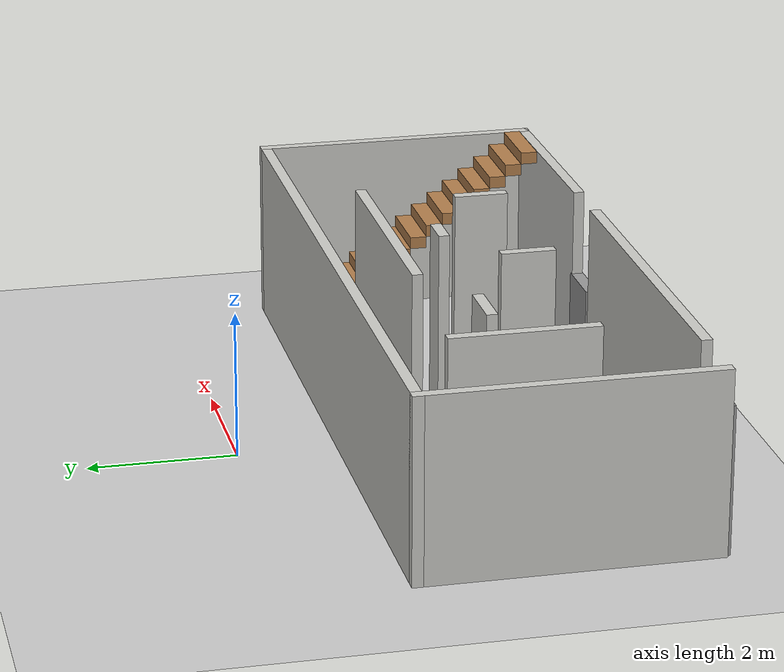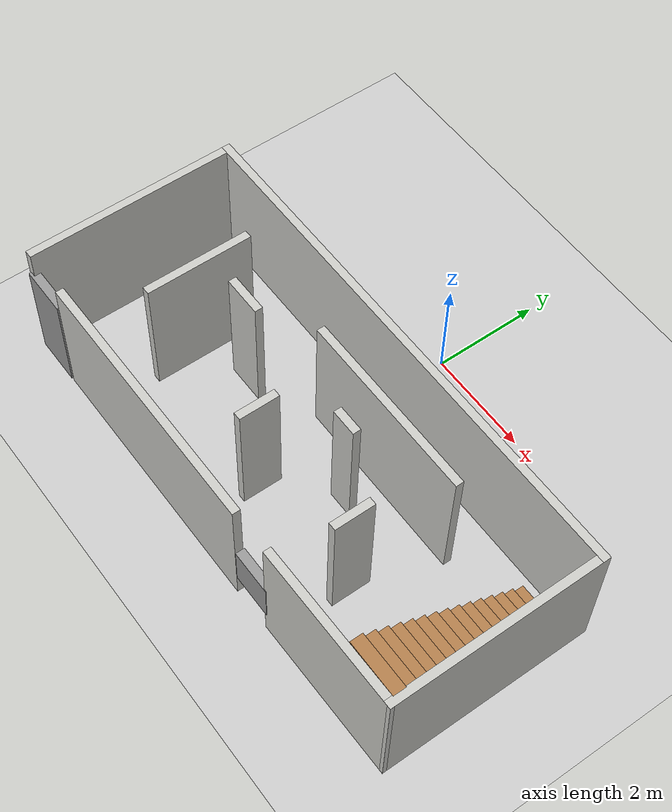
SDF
<sdf version="1.6">
 <world name="default">
  <light name="sun" type="directional">
   <pose>0 0 10 0 -0 0</pose>
   <diffuse>0.8 0.8 0.8 1</diffuse>
   <specular>0.1 0.1 0.1 1</specular>
   <attenuation>
    <range>1000</range>
    <constant>0.9</constant>
    <linear>0.01</linear>
    <quadratic>0.001</quadratic>
   </attenuation>
   <direction>-0.5 0.5 -1</direction>
  </light>
  <model name="ground_plane">
   <static>1</static>
   <link name="link">
    <collision name="collision">
     <geometry><plane><normal>0 0 1</normal><size>100 100</size></plane></geometry>
     <surface><friction><ode><mu>100</mu><mu2>50</mu2></ode></friction></surface>
    </collision>
    <visual name="visual">
     <cast_shadows>0</cast_shadows>
     <geometry><plane><normal>0 0 1</normal><size>100 100</size></plane></geometry>
     <material>
      <script><uri>file://media/materials/scripts/gazebo.material</uri><name>Gazebo/Grey</name></script>
     </material>
    </visual>
   </link>
  </model>
  <gravity>0 0 -9.8</gravity>
  <magnetic_field>6e-06 2.3e-05 -4.2e-05</magnetic_field>
  <atmosphere type="adiabatic"/>
  <physics name="default_physics" default="0" type="ode">
   <max_step_size>0.001</max_step_size>
   <real_time_factor>1</real_time_factor>
   <real_time_update_rate>1000</real_time_update_rate>
  </physics>
  <scene><ambient>0.4 0.4 0.4 1</ambient><background>0.7 0.7 0.7 1</background><shadows>1</shadows></scene>
  <spherical_coordinates>
   <surface_model>EARTH_WGS84</surface_model>
   <latitude_deg>0</latitude_deg>
   <longitude_deg>0</longitude_deg>
   <elevation>0</elevation>
   <heading_deg>0</heading_deg>
  </spherical_coordinates>
  <model name="tempworld">
   <pose>0.450354 -3.35425 0 0 -0 0</pose>
   <link name="Door_0">
    <collision name="Door_0_Collision">
     <geometry><box><size>0.9 0.17 2</size></box></geometry>
     <pose>0 0 1 0 -0 0</pose>
    </collision>
    <visual name="Door_0_Visual">
     <pose>0 0 1 0 -0 0</pose>
     <geometry><box><size>0.9 0.17 2</size></box></geometry>
     <material>
      <script><uri>file://media/materials/scripts/gazebo.material</uri><name>Gazebo/Grey</name></script>
     </material>
    </visual>
    <pose>-4.38035 -1.94425 0 0 -0 0</pose>
   </link>
   <link name="Stairs_1">
    <visual name="Stairs_1_Visual_0">
     <pose>4.24465 1.55208 0.083333 0 -0 0</pose>
     <geometry><box><size>1 0.233333 0.166667</size></box></geometry>
     <material>
      <script><uri>file://media/materials/scripts/gazebo.material</uri><name>Gazebo/Wood</name></script>
      <ambient>1 1 1 1</ambient>
     </material>
    </visual>
    <collision name="Stairs_1_Collision_0">
     <geometry><box><size>1 0.233333 0.166667</size></box></geometry>
     <pose>4.24465 1.55208 0.083333 0 -0 0</pose>
    </collision>
    <visual name="Stairs_1_Visual_1">
     <pose>4.24465 1.31875 0.25 0 -0 0</pose>
     <geometry><box><size>1 0.233333 0.166667</size></box></geometry>
     <material>
      <script><uri>file://media/materials/scripts/gazebo.material</uri><name>Gazebo/Wood</name></script>
      <ambient>1 1 1 1</ambient>
     </material>
    </visual>
    <collision name="Stairs_1_Collision_1">
     <geometry><box><size>1 0.233333 0.166667</size></box></geometry>
     <pose>4.24465 1.31875 0.25 0 -0 0</pose>
    </collision>
    <visual name="Stairs_1_Visual_2">
     <pose>4.24465 1.08542 0.416667 0 -0 0</pose>
     <geometry><box><size>1 0.233333 0.166667</size></box></geometry>
     <material>
      <script><uri>file://media/materials/scripts/gazebo.material</uri><name>Gazebo/Wood</name></script>
      <ambient>1 1 1 1</ambient>
     </material>
    </visual>
    <collision name="Stairs_1_Collision_2">
     <geometry><box><size>1 0.233333 0.166667</size></box></geometry>
     <pose>4.24465 1.08542 0.416667 0 -0 0</pose>
    </collision>
    <visual name="Stairs_1_Visual_3">
     <pose>4.24465 0.852083 0.583333 0 -0 0</pose>
     <geometry><box><size>1 0.233333 0.166667</size></box></geometry>
     <material>
      <script><uri>file://media/materials/scripts/gazebo.material</uri><name>Gazebo/Wood</name></script>
      <ambient>1 1 1 1</ambient>
     </material>
    </visual>
    <collision name="Stairs_1_Collision_3">
     <geometry><box><size>1 0.233333 0.166667</size></box></geometry>
     <pose>4.24465 0.852083 0.583333 0 -0 0</pose>
    </collision>
    <visual name="Stairs_1_Visual_4">
     <pose>4.24465 0.61875 0.75 0 -0 0</pose>
     <geometry><box><size>1 0.233333 0.166667</size></box></geometry>
     <material>
      <script><uri>file://media/materials/scripts/gazebo.material</uri><name>Gazebo/Wood</name></script>
      <ambient>1 1 1 1</ambient>
     </material>
    </visual>
    <collision name="Stairs_1_Collision_4">
     <geometry><box><size>1 0.233333 0.166667</size></box></geometry>
     <pose>4.24465 0.61875 0.75 0 -0 0</pose>
    </collision>
    <visual name="Stairs_1_Visual_5">
     <pose>4.24465 0.385417 0.916667 0 -0 0</pose>
     <geometry><box><size>1 0.233333 0.166667</size></box></geometry>
     <material>
      <script><uri>file://media/materials/scripts/gazebo.material</uri><name>Gazebo/Wood</name></script>
      <ambient>1 1 1 1</ambient>
     </material>
    </visual>
    <collision name="Stairs_1_Collision_5">
     <geometry><box><size>1 0.233333 0.166667</size></box></geometry>
     <pose>4.24465 0.385417 0.916667 0 -0 0</pose>
    </collision>
    <visual name="Stairs_1_Visual_6">
     <pose>4.24465 0.152083 1.08333 0 -0 0</pose>
     <geometry><box><size>1 0.233333 0.166667</size></box></geometry>
     <material>
      <script><uri>file://media/materials/scripts/gazebo.material</uri><name>Gazebo/Wood</name></script>
      <ambient>1 1 1 1</ambient>
     </material>
    </visual>
    <collision name="Stairs_1_Collision_6">
     <geometry><box><size>1 0.233333 0.166667</size></box></geometry>
     <pose>4.24465 0.152083 1.08333 0 -0 0</pose>
    </collision>
    <visual name="Stairs_1_Visual_7">
     <pose>4.24465 -0.08125 1.25 0 -0 0</pose>
     <geometry><box><size>1 0.233333 0.166667</size></box></geometry>
     <material>
      <script><uri>file://media/materials/scripts/gazebo.material</uri><name>Gazebo/Wood</name></script>
      <ambient>1 1 1 1</ambient>
     </material>
    </visual>
    <collision name="Stairs_1_Collision_7">
     <geometry><box><size>1 0.233333 0.166667</size></box></geometry>
     <pose>4.24465 -0.08125 1.25 0 -0 0</pose>
    </collision>
    <visual name="Stairs_1_Visual_8">
     <pose>4.24465 -0.314583 1.41667 0 -0 0</pose>
     <geometry><box><size>1 0.233333 0.166667</size></box></geometry>
     <material>
      <script><uri>file://media/materials/scripts/gazebo.material</uri><name>Gazebo/Wood</name></script>
      <ambient>1 1 1 1</ambient>
     </material>
    </visual>
    <collision name="Stairs_1_Collision_8">
     <geometry><box><size>1 0.233333 0.166667</size></box></geometry>
     <pose>4.24465 -0.314583 1.41667 0 -0 0</pose>
    </collision>
    <visual name="Stairs_1_Visual_9">
     <pose>4.24465 -0.547917 1.58333 0 -0 0</pose>
     <geometry><box><size>1 0.233333 0.166667</size></box></geometry>
     <material>
      <script><uri>file://media/materials/scripts/gazebo.material</uri><name>Gazebo/Wood</name></script>
      <ambient>1 1 1 1</ambient>
     </material>
    </visual>
    <collision name="Stairs_1_Collision_9">
     <geometry><box><size>1 0.233333 0.166667</size></box></geometry>
     <pose>4.24465 -0.547917 1.58333 0 -0 0</pose>
    </collision>
    <visual name="Stairs_1_Visual_10">
     <pose>4.24465 -0.78125 1.75 0 -0 0</pose>
     <geometry><box><size>1 0.233333 0.166667</size></box></geometry>
     <material>
      <script><uri>file://media/materials/scripts/gazebo.material</uri><name>Gazebo/Wood</name></script>
      <ambient>1 1 1 1</ambient>
     </material>
    </visual>
    <collision name="Stairs_1_Collision_10">
     <geometry><box><size>1 0.233333 0.166667</size></box></geometry>
     <pose>4.24465 -0.78125 1.75 0 -0 0</pose>
    </collision>
    <visual name="Stairs_1_Visual_11">
     <pose>4.24465 -1.01458 1.91667 0 -0 0</pose>
     <geometry><box><size>1 0.233333 0.166667</size></box></geometry>
     <material>
      <script><uri>file://media/materials/scripts/gazebo.material</uri><name>Gazebo/Wood</name></script>
      <ambient>1 1 1 1</ambient>
     </material>
    </visual>
    <collision name="Stairs_1_Collision_11">
     <geometry><box><size>1 0.233333 0.166667</size></box></geometry>
     <pose>4.24465 -1.01458 1.91667 0 -0 0</pose>
    </collision>
    <visual name="Stairs_1_Visual_12">
     <pose>4.24465 -1.24792 2.08333 0 -0 0</pose>
     <geometry><box><size>1 0.233333 0.166667</size></box></geometry>
     <material>
      <script><uri>file://media/materials/scripts/gazebo.material</uri><name>Gazebo/Wood</name></script>
      <ambient>1 1 1 1</ambient>
     </material>
    </visual>
    <collision name="Stairs_1_Collision_12">
     <geometry><box><size>1 0.233333 0.166667</size></box></geometry>
     <pose>4.24465 -1.24792 2.08333 0 -0 0</pose>
    </collision>
    <visual name="Stairs_1_Visual_13">
     <pose>4.24465 -1.48125 2.25 0 -0 0</pose>
     <geometry><box><size>1 0.233333 0.166667</size></box></geometry>
     <material>
      <script><uri>file://media/materials/scripts/gazebo.material</uri><name>Gazebo/Wood</name></script>
      <ambient>1 1 1 1</ambient>
     </material>
    </visual>
    <collision name="Stairs_1_Collision_13">
     <geometry><box><size>1 0.233333 0.166667</size></box></geometry>
     <pose>4.24465 -1.48125 2.25 0 -0 0</pose>
    </collision>
    <visual name="Stairs_1_Visual_14">
     <pose>4.24465 -1.71458 2.41667 0 -0 0</pose>
     <geometry><box><size>1 0.233333 0.166667</size></box></geometry>
     <material>
      <script><uri>file://media/materials/scripts/gazebo.material</uri><name>Gazebo/Wood</name></script>
      <ambient>1 1 1 1</ambient>
     </material>
    </visual>
    <collision name="Stairs_1_Collision_14">
     <geometry><box><size>1 0.233333 0.166667</size></box></geometry>
     <pose>4.24465 -1.71458 2.41667 0 -0 0</pose>
    </collision>
   </link>
   <link name="Wall_16">
    <collision name="Wall_16_Collision">
     <geometry><box><size>2 0.15 2.5</size></box></geometry>
     <pose>0 0 1.25 0 -0 0</pose>
    </collision>
    <visual name="Wall_16_Visual">
     <pose>0 0 1.25 0 -0 0</pose>
     <geometry><box><size>2 0.15 2.5</size></box></geometry>
     <material>
      <script><uri>file://media/materials/scripts/gazebo.material</uri><name>Gazebo/CeilingTiled</name></script>
      <ambient>1 1 1 1</ambient>
     </material>
    </visual>
    <pose>-3.06935 0.16675 0 0 0 -1.5708</pose>
   </link>
   <link name="Wall_18">
    <collision name="Wall_18_Collision">
     <geometry><box><size>0.75 0.15 2.5</size></box></geometry>
     <pose>0 0 1.25 0 -0 0</pose>
    </collision>
    <visual name="Wall_18_Visual">
     <pose>0 0 1.25 0 -0 0</pose>
     <geometry><box><size>0.75 0.15 2.5</size></box></geometry>
     <material>
      <script><uri>file://media/materials/scripts/gazebo.material</uri><name>Gazebo/CeilingTiled</name></script>
      <ambient>1 1 1 1</ambient>
     </material>
    </visual>
    <pose>-2.07935 0.42475 0 0 -0 0</pose>
   </link>
   <link name="Wall_2">
    <collision name="Wall_2_Collision">
     <geometry><box><size>9.75 0.15 2.5</size></box></geometry>
     <pose>0 0 1.25 0 -0 0</pose>
    </collision>
    <visual name="Wall_2_Visual">
     <pose>0 0 1.25 0 -0 0</pose>
     <geometry><box><size>9.75 0.15 2.5</size></box></geometry>
     <material>
      <script><uri>file://media/materials/scripts/gazebo.material</uri><name>Gazebo/CeilingTiled</name></script>
      <ambient>1 1 1 1</ambient>
     </material>
    </visual>
    <pose>-0.000354 1.94425 0 0 -0 0</pose>
   </link>
   <link name="Wall_20">
    <collision name="Wall_20_Collision">
     <geometry><box><size>3.5 0.15 2.5</size></box></geometry>
     <pose>0 0 1.25 0 -0 0</pose>
    </collision>
    <visual name="Wall_20_Visual">
     <pose>0 0 1.25 0 -0 0</pose>
     <geometry><box><size>3.5 0.15 2.5</size></box></geometry>
     <material>
      <script><uri>file://media/materials/scripts/gazebo.material</uri><name>Gazebo/CeilingTiled</name></script>
      <ambient>1 1 1 1</ambient>
     </material>
    </visual>
    <pose>0.905646 1.01125 0 0 -0 0</pose>
   </link>
   <link name="Wall_22">
    <collision name="Wall_22_Collision">
     <geometry><box><size>0.75 0.15 2.5</size></box></geometry>
     <pose>0 0 1.25 0 -0 0</pose>
    </collision>
    <visual name="Wall_22_Visual">
     <pose>0 0 1.25 0 -0 0</pose>
     <geometry><box><size>0.75 0.15 2.5</size></box></geometry>
     <material>
      <script><uri>file://media/materials/scripts/gazebo.material</uri><name>Gazebo/CeilingTiled</name></script>
      <ambient>1 1 1 1</ambient>
     </material>
    </visual>
    <pose>-0.251854 -0.62275 0 0 0 -1.5708</pose>
   </link>
   <link name="Wall_24">
    <collision name="Wall_24_Collision">
     <geometry><box><size>0.75 0.15 2.5</size></box></geometry>
     <pose>0 0 1.25 0 -0 0</pose>
    </collision>
    <visual name="Wall_24_Visual">
     <pose>0 0 1.25 0 -0 0</pose>
     <geometry><box><size>0.75 0.15 2.5</size></box></geometry>
     <material>
      <script><uri>file://media/materials/scripts/gazebo.material</uri><name>Gazebo/CeilingTiled</name></script>
      <ambient>1 1 1 1</ambient>
     </material>
    </visual>
    <pose>2.12865 -0.57675 0 0 0 -1.5708</pose>
   </link>
   <link name="Wall_26">
    <collision name="Wall_26_Collision">
     <geometry><box><size>0.5 0.15 2.5</size></box></geometry>
     <pose>0 0 1.25 0 -0 0</pose>
    </collision>
    <visual name="Wall_26_Visual">
     <pose>0 0 1.25 0 -0 0</pose>
     <geometry><box><size>0.5 0.15 2.5</size></box></geometry>
     <material>
      <script><uri>file://media/materials/scripts/gazebo.material</uri><name>Gazebo/CeilingTiled</name></script>
      <ambient>1 1 1 1</ambient>
     </material>
    </visual>
    <pose>0.785646 0.32125 0 0 -0 0</pose>
   </link>
   <link name="Wall_3">
    <collision name="Wall_3_Collision">
     <geometry><box><size>4 0.15 2.5</size></box></geometry>
     <pose>0 0 1.25 0 -0 0</pose>
    </collision>
    <visual name="Wall_3_Visual">
     <pose>0 0 1.25 0 -0 0</pose>
     <geometry><box><size>4 0.15 2.5</size></box></geometry>
     <material>
      <script><uri>file://media/materials/scripts/gazebo.material</uri><name>Gazebo/CeilingTiled</name></script>
      <ambient>1 1 1 1</ambient>
     </material>
    </visual>
    <pose>4.79965 0.01925 0 0 0 -1.5708</pose>
   </link>
   <link name="Wall_5">
    <collision name="Wall_5_Collision">
     <geometry><box><size>4 0.15 2.5</size></box></geometry>
     <pose>0 0 1.25 0 -0 0</pose>
    </collision>
    <visual name="Wall_5_Visual">
     <pose>0 0 1.25 0 -0 0</pose>
     <geometry><box><size>4 0.15 2.5</size></box></geometry>
     <material>
      <script><uri>file://media/materials/scripts/gazebo.material</uri><name>Gazebo/CeilingTiled</name></script>
      <ambient>1 1 1 1</ambient>
     </material>
    </visual>
    <pose>-4.80035 0.01925 0 0 0 -1.5708</pose>
   </link>
   <link name="Wall_7">
    <collision name="Wall_7_Collision">
     <geometry><box><size>5 0.15 2.5</size></box></geometry>
     <pose>0 0 1.25 0 -0 0</pose>
    </collision>
    <visual name="Wall_7_Visual">
     <pose>0 0 1.25 0 -0 0</pose>
     <geometry><box><size>5 0.15 2.5</size></box></geometry>
     <material>
      <script><uri>file://media/materials/scripts/gazebo.material</uri><name>Gazebo/CeilingTiled</name></script>
      <ambient>1 1 1 1</ambient>
     </material>
    </visual>
    <pose>-1.38035 -1.94425 0 0 -0 0</pose>
   </link>
   <link name="Wall_9">
    <collision name="Wall_9_Collision">
     <geometry><box><size>2.99363 0.15 2.5</size></box></geometry>
     <pose>0 0 1.25 0 -0 0</pose>
    </collision>
    <visual name="Wall_9_Visual">
     <pose>0 0 1.25 0 -0 0</pose>
     <geometry><box><size>2.99363 0.15 2.5</size></box></geometry>
     <material>
      <script><uri>file://media/materials/scripts/gazebo.material</uri><name>Gazebo/CeilingTiled</name></script>
      <ambient>1 1 1 1</ambient>
     </material>
    </visual>
    <pose>3.3779 -1.91925 0 0 -0 0.009495</pose>
   </link>
   <link name="Window_1">
    <collision name="Window_1_Collision">
     <geometry><box><size>0.8 0.17 0.8</size></box></geometry>
     <pose>0 0 0.4 0 -0 0</pose>
    </collision>
    <visual name="Window_1_Visual">
     <pose>0 0 0.4 0 -0 0</pose>
     <geometry><box><size>0.8 0.17 0.8</size></box></geometry>
     <material>
      <script><uri>file://media/materials/scripts/gazebo.material</uri><name>Gazebo/Grey</name></script>
     </material>
    </visual>
    <pose>1.53065 -1.93275 0.5 0 -0 0</pose>
   </link>
   <static>1</static>
  </model>
 </world>
</sdf>
